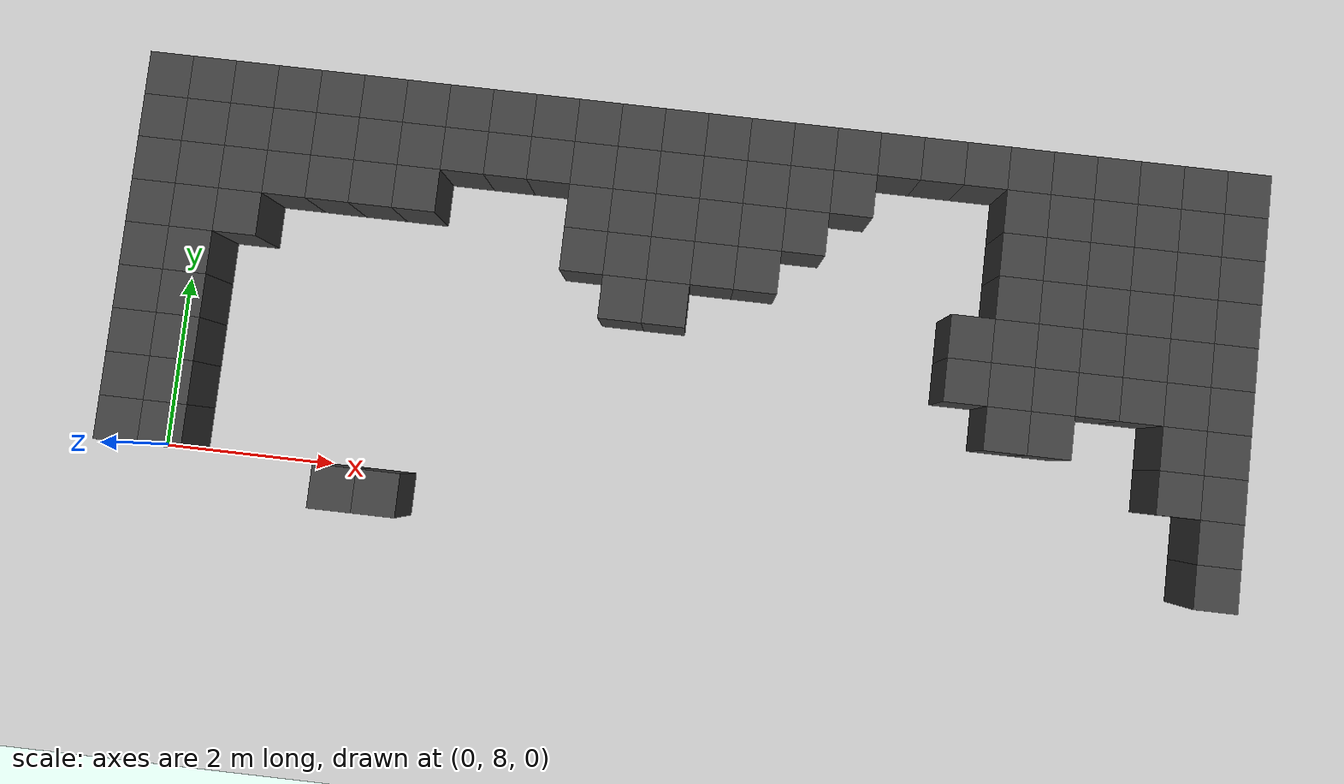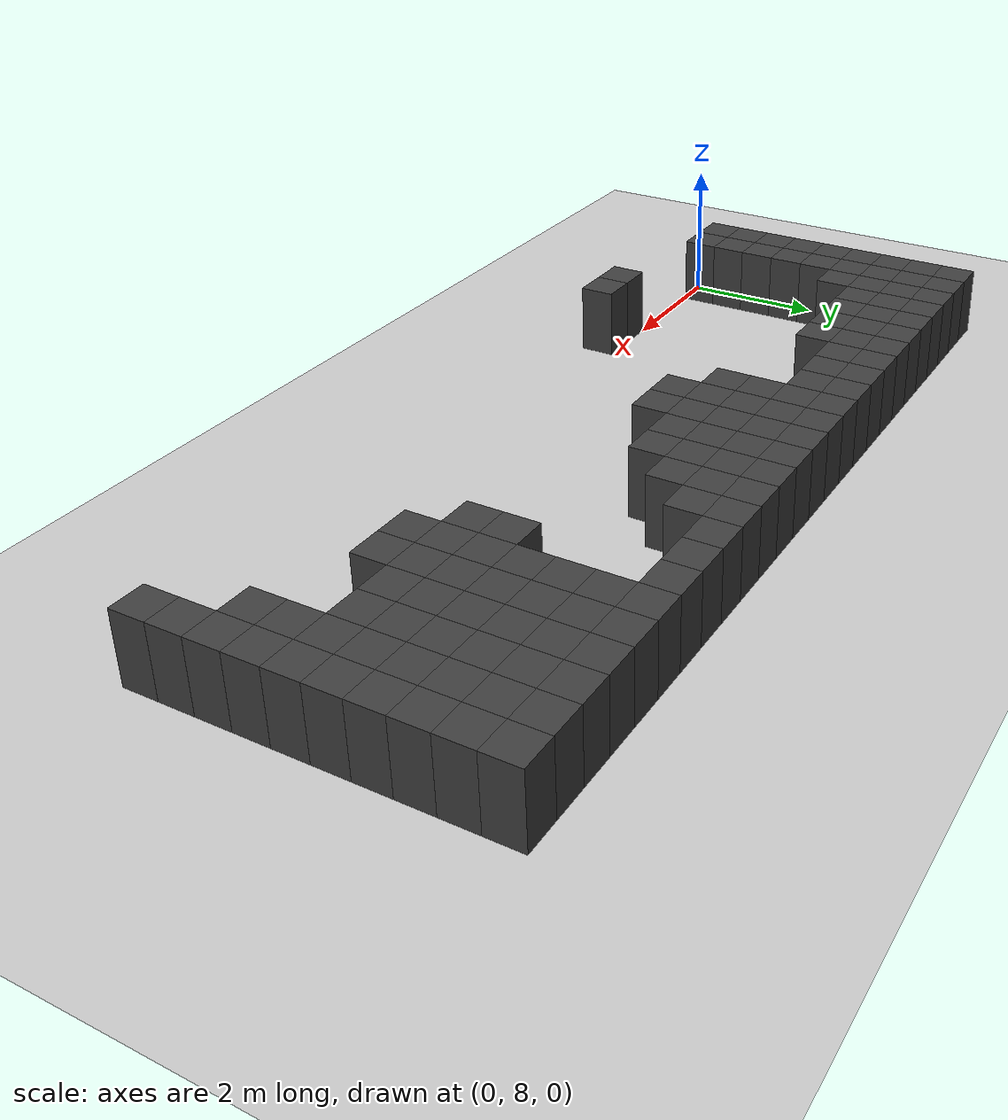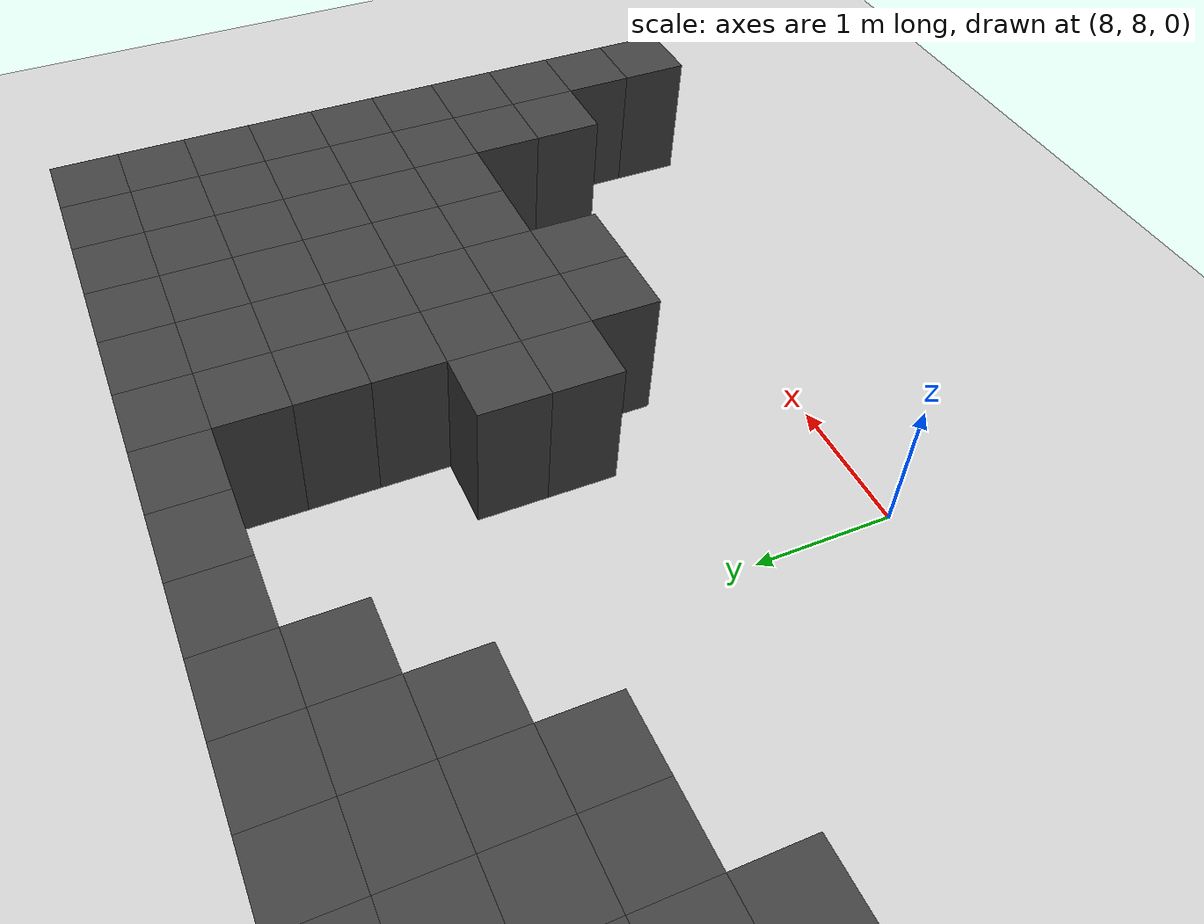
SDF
<sdf version="1.7">
 <world name="map_8074">
  <model name="ground_plane">
   <static>true</static>
   <link name="link">
    <collision name="collision">
     <geometry><plane><normal>0 0 1</normal><size>200 200</size></plane></geometry>
    </collision>
    <visual name="visual">
     <geometry><plane><normal>0 0 1</normal><size>200 200</size></plane></geometry>
     <material><ambient>0.8 0.8 0.8 1</ambient><diffuse>0.8 0.8 0.8 1</diffuse></material>
    </visual>
   </link>
  </model>
  <model name="maze_environment">
   <static>true</static>
   <link name="wall_24">
    <pose>-0.250 12.250 0.500 0 0 0</pose>
    <collision name="col"><geometry><box><size>0.5 0.5 1.0</size></box></geometry></collision>
    <visual name="vis">
     <geometry><box><size>0.5 0.5 1.0</size></box></geometry>
     <material><ambient>0.15 0.15 0.15 1</ambient><diffuse>0.25 0.25 0.25 1</diffuse></material>
    </visual>
   </link>
   <link name="wall_25">
    <pose>0.250 12.250 0.500 0 0 0</pose>
    <collision name="col"><geometry><box><size>0.5 0.5 1.0</size></box></geometry></collision>
    <visual name="vis">
     <geometry><box><size>0.5 0.5 1.0</size></box></geometry>
     <material><ambient>0.15 0.15 0.15 1</ambient><diffuse>0.25 0.25 0.25 1</diffuse></material>
    </visual>
   </link>
   <link name="wall_26">
    <pose>0.750 12.250 0.500 0 0 0</pose>
    <collision name="col"><geometry><box><size>0.5 0.5 1.0</size></box></geometry></collision>
    <visual name="vis">
     <geometry><box><size>0.5 0.5 1.0</size></box></geometry>
     <material><ambient>0.15 0.15 0.15 1</ambient><diffuse>0.25 0.25 0.25 1</diffuse></material>
    </visual>
   </link>
   <link name="wall_27">
    <pose>1.250 12.250 0.500 0 0 0</pose>
    <collision name="col"><geometry><box><size>0.5 0.5 1.0</size></box></geometry></collision>
    <visual name="vis">
     <geometry><box><size>0.5 0.5 1.0</size></box></geometry>
     <material><ambient>0.15 0.15 0.15 1</ambient><diffuse>0.25 0.25 0.25 1</diffuse></material>
    </visual>
   </link>
   <link name="wall_28">
    <pose>1.750 12.250 0.500 0 0 0</pose>
    <collision name="col"><geometry><box><size>0.5 0.5 1.0</size></box></geometry></collision>
    <visual name="vis">
     <geometry><box><size>0.5 0.5 1.0</size></box></geometry>
     <material><ambient>0.15 0.15 0.15 1</ambient><diffuse>0.25 0.25 0.25 1</diffuse></material>
    </visual>
   </link>
   <link name="wall_29">
    <pose>2.250 12.250 0.500 0 0 0</pose>
    <collision name="col"><geometry><box><size>0.5 0.5 1.0</size></box></geometry></collision>
    <visual name="vis">
     <geometry><box><size>0.5 0.5 1.0</size></box></geometry>
     <material><ambient>0.15 0.15 0.15 1</ambient><diffuse>0.25 0.25 0.25 1</diffuse></material>
    </visual>
   </link>
   <link name="wall_30">
    <pose>2.750 12.250 0.500 0 0 0</pose>
    <collision name="col"><geometry><box><size>0.5 0.5 1.0</size></box></geometry></collision>
    <visual name="vis">
     <geometry><box><size>0.5 0.5 1.0</size></box></geometry>
     <material><ambient>0.15 0.15 0.15 1</ambient><diffuse>0.25 0.25 0.25 1</diffuse></material>
    </visual>
   </link>
   <link name="wall_31">
    <pose>3.250 12.250 0.500 0 0 0</pose>
    <collision name="col"><geometry><box><size>0.5 0.5 1.0</size></box></geometry></collision>
    <visual name="vis">
     <geometry><box><size>0.5 0.5 1.0</size></box></geometry>
     <material><ambient>0.15 0.15 0.15 1</ambient><diffuse>0.25 0.25 0.25 1</diffuse></material>
    </visual>
   </link>
   <link name="wall_32">
    <pose>3.750 12.250 0.500 0 0 0</pose>
    <collision name="col"><geometry><box><size>0.5 0.5 1.0</size></box></geometry></collision>
    <visual name="vis">
     <geometry><box><size>0.5 0.5 1.0</size></box></geometry>
     <material><ambient>0.15 0.15 0.15 1</ambient><diffuse>0.25 0.25 0.25 1</diffuse></material>
    </visual>
   </link>
   <link name="wall_33">
    <pose>4.250 12.250 0.500 0 0 0</pose>
    <collision name="col"><geometry><box><size>0.5 0.5 1.0</size></box></geometry></collision>
    <visual name="vis">
     <geometry><box><size>0.5 0.5 1.0</size></box></geometry>
     <material><ambient>0.15 0.15 0.15 1</ambient><diffuse>0.25 0.25 0.25 1</diffuse></material>
    </visual>
   </link>
   <link name="wall_34">
    <pose>4.750 12.250 0.500 0 0 0</pose>
    <collision name="col"><geometry><box><size>0.5 0.5 1.0</size></box></geometry></collision>
    <visual name="vis">
     <geometry><box><size>0.5 0.5 1.0</size></box></geometry>
     <material><ambient>0.15 0.15 0.15 1</ambient><diffuse>0.25 0.25 0.25 1</diffuse></material>
    </visual>
   </link>
   <link name="wall_35">
    <pose>5.250 12.250 0.500 0 0 0</pose>
    <collision name="col"><geometry><box><size>0.5 0.5 1.0</size></box></geometry></collision>
    <visual name="vis">
     <geometry><box><size>0.5 0.5 1.0</size></box></geometry>
     <material><ambient>0.15 0.15 0.15 1</ambient><diffuse>0.25 0.25 0.25 1</diffuse></material>
    </visual>
   </link>
   <link name="wall_36">
    <pose>5.750 12.250 0.500 0 0 0</pose>
    <collision name="col"><geometry><box><size>0.5 0.5 1.0</size></box></geometry></collision>
    <visual name="vis">
     <geometry><box><size>0.5 0.5 1.0</size></box></geometry>
     <material><ambient>0.15 0.15 0.15 1</ambient><diffuse>0.25 0.25 0.25 1</diffuse></material>
    </visual>
   </link>
   <link name="wall_37">
    <pose>6.250 12.250 0.500 0 0 0</pose>
    <collision name="col"><geometry><box><size>0.5 0.5 1.0</size></box></geometry></collision>
    <visual name="vis">
     <geometry><box><size>0.5 0.5 1.0</size></box></geometry>
     <material><ambient>0.15 0.15 0.15 1</ambient><diffuse>0.25 0.25 0.25 1</diffuse></material>
    </visual>
   </link>
   <link name="wall_38">
    <pose>6.750 12.250 0.500 0 0 0</pose>
    <collision name="col"><geometry><box><size>0.5 0.5 1.0</size></box></geometry></collision>
    <visual name="vis">
     <geometry><box><size>0.5 0.5 1.0</size></box></geometry>
     <material><ambient>0.15 0.15 0.15 1</ambient><diffuse>0.25 0.25 0.25 1</diffuse></material>
    </visual>
   </link>
   <link name="wall_39">
    <pose>7.250 12.250 0.500 0 0 0</pose>
    <collision name="col"><geometry><box><size>0.5 0.5 1.0</size></box></geometry></collision>
    <visual name="vis">
     <geometry><box><size>0.5 0.5 1.0</size></box></geometry>
     <material><ambient>0.15 0.15 0.15 1</ambient><diffuse>0.25 0.25 0.25 1</diffuse></material>
    </visual>
   </link>
   <link name="wall_40">
    <pose>7.750 12.250 0.500 0 0 0</pose>
    <collision name="col"><geometry><box><size>0.5 0.5 1.0</size></box></geometry></collision>
    <visual name="vis">
     <geometry><box><size>0.5 0.5 1.0</size></box></geometry>
     <material><ambient>0.15 0.15 0.15 1</ambient><diffuse>0.25 0.25 0.25 1</diffuse></material>
    </visual>
   </link>
   <link name="wall_41">
    <pose>8.250 12.250 0.500 0 0 0</pose>
    <collision name="col"><geometry><box><size>0.5 0.5 1.0</size></box></geometry></collision>
    <visual name="vis">
     <geometry><box><size>0.5 0.5 1.0</size></box></geometry>
     <material><ambient>0.15 0.15 0.15 1</ambient><diffuse>0.25 0.25 0.25 1</diffuse></material>
    </visual>
   </link>
   <link name="wall_42">
    <pose>8.750 12.250 0.500 0 0 0</pose>
    <collision name="col"><geometry><box><size>0.5 0.5 1.0</size></box></geometry></collision>
    <visual name="vis">
     <geometry><box><size>0.5 0.5 1.0</size></box></geometry>
     <material><ambient>0.15 0.15 0.15 1</ambient><diffuse>0.25 0.25 0.25 1</diffuse></material>
    </visual>
   </link>
   <link name="wall_43">
    <pose>9.250 12.250 0.500 0 0 0</pose>
    <collision name="col"><geometry><box><size>0.5 0.5 1.0</size></box></geometry></collision>
    <visual name="vis">
     <geometry><box><size>0.5 0.5 1.0</size></box></geometry>
     <material><ambient>0.15 0.15 0.15 1</ambient><diffuse>0.25 0.25 0.25 1</diffuse></material>
    </visual>
   </link>
   <link name="wall_44">
    <pose>9.750 12.250 0.500 0 0 0</pose>
    <collision name="col"><geometry><box><size>0.5 0.5 1.0</size></box></geometry></collision>
    <visual name="vis">
     <geometry><box><size>0.5 0.5 1.0</size></box></geometry>
     <material><ambient>0.15 0.15 0.15 1</ambient><diffuse>0.25 0.25 0.25 1</diffuse></material>
    </visual>
   </link>
   <link name="wall_45">
    <pose>10.250 12.250 0.500 0 0 0</pose>
    <collision name="col"><geometry><box><size>0.5 0.5 1.0</size></box></geometry></collision>
    <visual name="vis">
     <geometry><box><size>0.5 0.5 1.0</size></box></geometry>
     <material><ambient>0.15 0.15 0.15 1</ambient><diffuse>0.25 0.25 0.25 1</diffuse></material>
    </visual>
   </link>
   <link name="wall_46">
    <pose>10.750 12.250 0.500 0 0 0</pose>
    <collision name="col"><geometry><box><size>0.5 0.5 1.0</size></box></geometry></collision>
    <visual name="vis">
     <geometry><box><size>0.5 0.5 1.0</size></box></geometry>
     <material><ambient>0.15 0.15 0.15 1</ambient><diffuse>0.25 0.25 0.25 1</diffuse></material>
    </visual>
   </link>
   <link name="wall_47">
    <pose>11.250 12.250 0.500 0 0 0</pose>
    <collision name="col"><geometry><box><size>0.5 0.5 1.0</size></box></geometry></collision>
    <visual name="vis">
     <geometry><box><size>0.5 0.5 1.0</size></box></geometry>
     <material><ambient>0.15 0.15 0.15 1</ambient><diffuse>0.25 0.25 0.25 1</diffuse></material>
    </visual>
   </link>
   <link name="wall_48">
    <pose>11.750 12.250 0.500 0 0 0</pose>
    <collision name="col"><geometry><box><size>0.5 0.5 1.0</size></box></geometry></collision>
    <visual name="vis">
     <geometry><box><size>0.5 0.5 1.0</size></box></geometry>
     <material><ambient>0.15 0.15 0.15 1</ambient><diffuse>0.25 0.25 0.25 1</diffuse></material>
    </visual>
   </link>
   <link name="wall_49">
    <pose>12.250 12.250 0.500 0 0 0</pose>
    <collision name="col"><geometry><box><size>0.5 0.5 1.0</size></box></geometry></collision>
    <visual name="vis">
     <geometry><box><size>0.5 0.5 1.0</size></box></geometry>
     <material><ambient>0.15 0.15 0.15 1</ambient><diffuse>0.25 0.25 0.25 1</diffuse></material>
    </visual>
   </link>
   <link name="wall_63">
    <pose>-0.250 11.750 0.500 0 0 0</pose>
    <collision name="col"><geometry><box><size>0.5 0.5 1.0</size></box></geometry></collision>
    <visual name="vis">
     <geometry><box><size>0.5 0.5 1.0</size></box></geometry>
     <material><ambient>0.15 0.15 0.15 1</ambient><diffuse>0.25 0.25 0.25 1</diffuse></material>
    </visual>
   </link>
   <link name="wall_64">
    <pose>0.250 11.750 0.500 0 0 0</pose>
    <collision name="col"><geometry><box><size>0.5 0.5 1.0</size></box></geometry></collision>
    <visual name="vis">
     <geometry><box><size>0.5 0.5 1.0</size></box></geometry>
     <material><ambient>0.15 0.15 0.15 1</ambient><diffuse>0.25 0.25 0.25 1</diffuse></material>
    </visual>
   </link>
   <link name="wall_65">
    <pose>0.750 11.750 0.500 0 0 0</pose>
    <collision name="col"><geometry><box><size>0.5 0.5 1.0</size></box></geometry></collision>
    <visual name="vis">
     <geometry><box><size>0.5 0.5 1.0</size></box></geometry>
     <material><ambient>0.15 0.15 0.15 1</ambient><diffuse>0.25 0.25 0.25 1</diffuse></material>
    </visual>
   </link>
   <link name="wall_66">
    <pose>1.250 11.750 0.500 0 0 0</pose>
    <collision name="col"><geometry><box><size>0.5 0.5 1.0</size></box></geometry></collision>
    <visual name="vis">
     <geometry><box><size>0.5 0.5 1.0</size></box></geometry>
     <material><ambient>0.15 0.15 0.15 1</ambient><diffuse>0.25 0.25 0.25 1</diffuse></material>
    </visual>
   </link>
   <link name="wall_67">
    <pose>1.750 11.750 0.500 0 0 0</pose>
    <collision name="col"><geometry><box><size>0.5 0.5 1.0</size></box></geometry></collision>
    <visual name="vis">
     <geometry><box><size>0.5 0.5 1.0</size></box></geometry>
     <material><ambient>0.15 0.15 0.15 1</ambient><diffuse>0.25 0.25 0.25 1</diffuse></material>
    </visual>
   </link>
   <link name="wall_68">
    <pose>2.250 11.750 0.500 0 0 0</pose>
    <collision name="col"><geometry><box><size>0.5 0.5 1.0</size></box></geometry></collision>
    <visual name="vis">
     <geometry><box><size>0.5 0.5 1.0</size></box></geometry>
     <material><ambient>0.15 0.15 0.15 1</ambient><diffuse>0.25 0.25 0.25 1</diffuse></material>
    </visual>
   </link>
   <link name="wall_69">
    <pose>2.750 11.750 0.500 0 0 0</pose>
    <collision name="col"><geometry><box><size>0.5 0.5 1.0</size></box></geometry></collision>
    <visual name="vis">
     <geometry><box><size>0.5 0.5 1.0</size></box></geometry>
     <material><ambient>0.15 0.15 0.15 1</ambient><diffuse>0.25 0.25 0.25 1</diffuse></material>
    </visual>
   </link>
   <link name="wall_70">
    <pose>3.250 11.750 0.500 0 0 0</pose>
    <collision name="col"><geometry><box><size>0.5 0.5 1.0</size></box></geometry></collision>
    <visual name="vis">
     <geometry><box><size>0.5 0.5 1.0</size></box></geometry>
     <material><ambient>0.15 0.15 0.15 1</ambient><diffuse>0.25 0.25 0.25 1</diffuse></material>
    </visual>
   </link>
   <link name="wall_71">
    <pose>3.750 11.750 0.500 0 0 0</pose>
    <collision name="col"><geometry><box><size>0.5 0.5 1.0</size></box></geometry></collision>
    <visual name="vis">
     <geometry><box><size>0.5 0.5 1.0</size></box></geometry>
     <material><ambient>0.15 0.15 0.15 1</ambient><diffuse>0.25 0.25 0.25 1</diffuse></material>
    </visual>
   </link>
   <link name="wall_72">
    <pose>4.250 11.750 0.500 0 0 0</pose>
    <collision name="col"><geometry><box><size>0.5 0.5 1.0</size></box></geometry></collision>
    <visual name="vis">
     <geometry><box><size>0.5 0.5 1.0</size></box></geometry>
     <material><ambient>0.15 0.15 0.15 1</ambient><diffuse>0.25 0.25 0.25 1</diffuse></material>
    </visual>
   </link>
   <link name="wall_73">
    <pose>4.750 11.750 0.500 0 0 0</pose>
    <collision name="col"><geometry><box><size>0.5 0.5 1.0</size></box></geometry></collision>
    <visual name="vis">
     <geometry><box><size>0.5 0.5 1.0</size></box></geometry>
     <material><ambient>0.15 0.15 0.15 1</ambient><diffuse>0.25 0.25 0.25 1</diffuse></material>
    </visual>
   </link>
   <link name="wall_74">
    <pose>5.250 11.750 0.500 0 0 0</pose>
    <collision name="col"><geometry><box><size>0.5 0.5 1.0</size></box></geometry></collision>
    <visual name="vis">
     <geometry><box><size>0.5 0.5 1.0</size></box></geometry>
     <material><ambient>0.15 0.15 0.15 1</ambient><diffuse>0.25 0.25 0.25 1</diffuse></material>
    </visual>
   </link>
   <link name="wall_75">
    <pose>5.750 11.750 0.500 0 0 0</pose>
    <collision name="col"><geometry><box><size>0.5 0.5 1.0</size></box></geometry></collision>
    <visual name="vis">
     <geometry><box><size>0.5 0.5 1.0</size></box></geometry>
     <material><ambient>0.15 0.15 0.15 1</ambient><diffuse>0.25 0.25 0.25 1</diffuse></material>
    </visual>
   </link>
   <link name="wall_76">
    <pose>6.250 11.750 0.500 0 0 0</pose>
    <collision name="col"><geometry><box><size>0.5 0.5 1.0</size></box></geometry></collision>
    <visual name="vis">
     <geometry><box><size>0.5 0.5 1.0</size></box></geometry>
     <material><ambient>0.15 0.15 0.15 1</ambient><diffuse>0.25 0.25 0.25 1</diffuse></material>
    </visual>
   </link>
   <link name="wall_77">
    <pose>6.750 11.750 0.500 0 0 0</pose>
    <collision name="col"><geometry><box><size>0.5 0.5 1.0</size></box></geometry></collision>
    <visual name="vis">
     <geometry><box><size>0.5 0.5 1.0</size></box></geometry>
     <material><ambient>0.15 0.15 0.15 1</ambient><diffuse>0.25 0.25 0.25 1</diffuse></material>
    </visual>
   </link>
   <link name="wall_78">
    <pose>7.250 11.750 0.500 0 0 0</pose>
    <collision name="col"><geometry><box><size>0.5 0.5 1.0</size></box></geometry></collision>
    <visual name="vis">
     <geometry><box><size>0.5 0.5 1.0</size></box></geometry>
     <material><ambient>0.15 0.15 0.15 1</ambient><diffuse>0.25 0.25 0.25 1</diffuse></material>
    </visual>
   </link>
   <link name="wall_79">
    <pose>7.750 11.750 0.500 0 0 0</pose>
    <collision name="col"><geometry><box><size>0.5 0.5 1.0</size></box></geometry></collision>
    <visual name="vis">
     <geometry><box><size>0.5 0.5 1.0</size></box></geometry>
     <material><ambient>0.15 0.15 0.15 1</ambient><diffuse>0.25 0.25 0.25 1</diffuse></material>
    </visual>
   </link>
   <link name="wall_80">
    <pose>9.750 11.750 0.500 0 0 0</pose>
    <collision name="col"><geometry><box><size>0.5 0.5 1.0</size></box></geometry></collision>
    <visual name="vis">
     <geometry><box><size>0.5 0.5 1.0</size></box></geometry>
     <material><ambient>0.15 0.15 0.15 1</ambient><diffuse>0.25 0.25 0.25 1</diffuse></material>
    </visual>
   </link>
   <link name="wall_81">
    <pose>10.250 11.750 0.500 0 0 0</pose>
    <collision name="col"><geometry><box><size>0.5 0.5 1.0</size></box></geometry></collision>
    <visual name="vis">
     <geometry><box><size>0.5 0.5 1.0</size></box></geometry>
     <material><ambient>0.15 0.15 0.15 1</ambient><diffuse>0.25 0.25 0.25 1</diffuse></material>
    </visual>
   </link>
   <link name="wall_82">
    <pose>10.750 11.750 0.500 0 0 0</pose>
    <collision name="col"><geometry><box><size>0.5 0.5 1.0</size></box></geometry></collision>
    <visual name="vis">
     <geometry><box><size>0.5 0.5 1.0</size></box></geometry>
     <material><ambient>0.15 0.15 0.15 1</ambient><diffuse>0.25 0.25 0.25 1</diffuse></material>
    </visual>
   </link>
   <link name="wall_83">
    <pose>11.250 11.750 0.500 0 0 0</pose>
    <collision name="col"><geometry><box><size>0.5 0.5 1.0</size></box></geometry></collision>
    <visual name="vis">
     <geometry><box><size>0.5 0.5 1.0</size></box></geometry>
     <material><ambient>0.15 0.15 0.15 1</ambient><diffuse>0.25 0.25 0.25 1</diffuse></material>
    </visual>
   </link>
   <link name="wall_84">
    <pose>11.750 11.750 0.500 0 0 0</pose>
    <collision name="col"><geometry><box><size>0.5 0.5 1.0</size></box></geometry></collision>
    <visual name="vis">
     <geometry><box><size>0.5 0.5 1.0</size></box></geometry>
     <material><ambient>0.15 0.15 0.15 1</ambient><diffuse>0.25 0.25 0.25 1</diffuse></material>
    </visual>
   </link>
   <link name="wall_85">
    <pose>12.250 11.750 0.500 0 0 0</pose>
    <collision name="col"><geometry><box><size>0.5 0.5 1.0</size></box></geometry></collision>
    <visual name="vis">
     <geometry><box><size>0.5 0.5 1.0</size></box></geometry>
     <material><ambient>0.15 0.15 0.15 1</ambient><diffuse>0.25 0.25 0.25 1</diffuse></material>
    </visual>
   </link>
   <link name="wall_92">
    <pose>-0.250 11.250 0.500 0 0 0</pose>
    <collision name="col"><geometry><box><size>0.5 0.5 1.0</size></box></geometry></collision>
    <visual name="vis">
     <geometry><box><size>0.5 0.5 1.0</size></box></geometry>
     <material><ambient>0.15 0.15 0.15 1</ambient><diffuse>0.25 0.25 0.25 1</diffuse></material>
    </visual>
   </link>
   <link name="wall_93">
    <pose>0.250 11.250 0.500 0 0 0</pose>
    <collision name="col"><geometry><box><size>0.5 0.5 1.0</size></box></geometry></collision>
    <visual name="vis">
     <geometry><box><size>0.5 0.5 1.0</size></box></geometry>
     <material><ambient>0.15 0.15 0.15 1</ambient><diffuse>0.25 0.25 0.25 1</diffuse></material>
    </visual>
   </link>
   <link name="wall_94">
    <pose>0.750 11.250 0.500 0 0 0</pose>
    <collision name="col"><geometry><box><size>0.5 0.5 1.0</size></box></geometry></collision>
    <visual name="vis">
     <geometry><box><size>0.5 0.5 1.0</size></box></geometry>
     <material><ambient>0.15 0.15 0.15 1</ambient><diffuse>0.25 0.25 0.25 1</diffuse></material>
    </visual>
   </link>
   <link name="wall_95">
    <pose>1.250 11.250 0.500 0 0 0</pose>
    <collision name="col"><geometry><box><size>0.5 0.5 1.0</size></box></geometry></collision>
    <visual name="vis">
     <geometry><box><size>0.5 0.5 1.0</size></box></geometry>
     <material><ambient>0.15 0.15 0.15 1</ambient><diffuse>0.25 0.25 0.25 1</diffuse></material>
    </visual>
   </link>
   <link name="wall_96">
    <pose>1.750 11.250 0.500 0 0 0</pose>
    <collision name="col"><geometry><box><size>0.5 0.5 1.0</size></box></geometry></collision>
    <visual name="vis">
     <geometry><box><size>0.5 0.5 1.0</size></box></geometry>
     <material><ambient>0.15 0.15 0.15 1</ambient><diffuse>0.25 0.25 0.25 1</diffuse></material>
    </visual>
   </link>
   <link name="wall_97">
    <pose>2.250 11.250 0.500 0 0 0</pose>
    <collision name="col"><geometry><box><size>0.5 0.5 1.0</size></box></geometry></collision>
    <visual name="vis">
     <geometry><box><size>0.5 0.5 1.0</size></box></geometry>
     <material><ambient>0.15 0.15 0.15 1</ambient><diffuse>0.25 0.25 0.25 1</diffuse></material>
    </visual>
   </link>
   <link name="wall_98">
    <pose>2.750 11.250 0.500 0 0 0</pose>
    <collision name="col"><geometry><box><size>0.5 0.5 1.0</size></box></geometry></collision>
    <visual name="vis">
     <geometry><box><size>0.5 0.5 1.0</size></box></geometry>
     <material><ambient>0.15 0.15 0.15 1</ambient><diffuse>0.25 0.25 0.25 1</diffuse></material>
    </visual>
   </link>
   <link name="wall_99">
    <pose>4.750 11.250 0.500 0 0 0</pose>
    <collision name="col"><geometry><box><size>0.5 0.5 1.0</size></box></geometry></collision>
    <visual name="vis">
     <geometry><box><size>0.5 0.5 1.0</size></box></geometry>
     <material><ambient>0.15 0.15 0.15 1</ambient><diffuse>0.25 0.25 0.25 1</diffuse></material>
    </visual>
   </link>
   <link name="wall_100">
    <pose>5.250 11.250 0.500 0 0 0</pose>
    <collision name="col"><geometry><box><size>0.5 0.5 1.0</size></box></geometry></collision>
    <visual name="vis">
     <geometry><box><size>0.5 0.5 1.0</size></box></geometry>
     <material><ambient>0.15 0.15 0.15 1</ambient><diffuse>0.25 0.25 0.25 1</diffuse></material>
    </visual>
   </link>
   <link name="wall_101">
    <pose>5.750 11.250 0.500 0 0 0</pose>
    <collision name="col"><geometry><box><size>0.5 0.5 1.0</size></box></geometry></collision>
    <visual name="vis">
     <geometry><box><size>0.5 0.5 1.0</size></box></geometry>
     <material><ambient>0.15 0.15 0.15 1</ambient><diffuse>0.25 0.25 0.25 1</diffuse></material>
    </visual>
   </link>
   <link name="wall_102">
    <pose>6.250 11.250 0.500 0 0 0</pose>
    <collision name="col"><geometry><box><size>0.5 0.5 1.0</size></box></geometry></collision>
    <visual name="vis">
     <geometry><box><size>0.5 0.5 1.0</size></box></geometry>
     <material><ambient>0.15 0.15 0.15 1</ambient><diffuse>0.25 0.25 0.25 1</diffuse></material>
    </visual>
   </link>
   <link name="wall_103">
    <pose>6.750 11.250 0.500 0 0 0</pose>
    <collision name="col"><geometry><box><size>0.5 0.5 1.0</size></box></geometry></collision>
    <visual name="vis">
     <geometry><box><size>0.5 0.5 1.0</size></box></geometry>
     <material><ambient>0.15 0.15 0.15 1</ambient><diffuse>0.25 0.25 0.25 1</diffuse></material>
    </visual>
   </link>
   <link name="wall_104">
    <pose>7.250 11.250 0.500 0 0 0</pose>
    <collision name="col"><geometry><box><size>0.5 0.5 1.0</size></box></geometry></collision>
    <visual name="vis">
     <geometry><box><size>0.5 0.5 1.0</size></box></geometry>
     <material><ambient>0.15 0.15 0.15 1</ambient><diffuse>0.25 0.25 0.25 1</diffuse></material>
    </visual>
   </link>
   <link name="wall_105">
    <pose>9.750 11.250 0.500 0 0 0</pose>
    <collision name="col"><geometry><box><size>0.5 0.5 1.0</size></box></geometry></collision>
    <visual name="vis">
     <geometry><box><size>0.5 0.5 1.0</size></box></geometry>
     <material><ambient>0.15 0.15 0.15 1</ambient><diffuse>0.25 0.25 0.25 1</diffuse></material>
    </visual>
   </link>
   <link name="wall_106">
    <pose>10.250 11.250 0.500 0 0 0</pose>
    <collision name="col"><geometry><box><size>0.5 0.5 1.0</size></box></geometry></collision>
    <visual name="vis">
     <geometry><box><size>0.5 0.5 1.0</size></box></geometry>
     <material><ambient>0.15 0.15 0.15 1</ambient><diffuse>0.25 0.25 0.25 1</diffuse></material>
    </visual>
   </link>
   <link name="wall_107">
    <pose>10.750 11.250 0.500 0 0 0</pose>
    <collision name="col"><geometry><box><size>0.5 0.5 1.0</size></box></geometry></collision>
    <visual name="vis">
     <geometry><box><size>0.5 0.5 1.0</size></box></geometry>
     <material><ambient>0.15 0.15 0.15 1</ambient><diffuse>0.25 0.25 0.25 1</diffuse></material>
    </visual>
   </link>
   <link name="wall_108">
    <pose>11.250 11.250 0.500 0 0 0</pose>
    <collision name="col"><geometry><box><size>0.5 0.5 1.0</size></box></geometry></collision>
    <visual name="vis">
     <geometry><box><size>0.5 0.5 1.0</size></box></geometry>
     <material><ambient>0.15 0.15 0.15 1</ambient><diffuse>0.25 0.25 0.25 1</diffuse></material>
    </visual>
   </link>
   <link name="wall_109">
    <pose>11.750 11.250 0.500 0 0 0</pose>
    <collision name="col"><geometry><box><size>0.5 0.5 1.0</size></box></geometry></collision>
    <visual name="vis">
     <geometry><box><size>0.5 0.5 1.0</size></box></geometry>
     <material><ambient>0.15 0.15 0.15 1</ambient><diffuse>0.25 0.25 0.25 1</diffuse></material>
    </visual>
   </link>
   <link name="wall_110">
    <pose>12.250 11.250 0.500 0 0 0</pose>
    <collision name="col"><geometry><box><size>0.5 0.5 1.0</size></box></geometry></collision>
    <visual name="vis">
     <geometry><box><size>0.5 0.5 1.0</size></box></geometry>
     <material><ambient>0.15 0.15 0.15 1</ambient><diffuse>0.25 0.25 0.25 1</diffuse></material>
    </visual>
   </link>
   <link name="wall_115">
    <pose>-0.250 10.750 0.500 0 0 0</pose>
    <collision name="col"><geometry><box><size>0.5 0.5 1.0</size></box></geometry></collision>
    <visual name="vis">
     <geometry><box><size>0.5 0.5 1.0</size></box></geometry>
     <material><ambient>0.15 0.15 0.15 1</ambient><diffuse>0.25 0.25 0.25 1</diffuse></material>
    </visual>
   </link>
   <link name="wall_116">
    <pose>0.250 10.750 0.500 0 0 0</pose>
    <collision name="col"><geometry><box><size>0.5 0.5 1.0</size></box></geometry></collision>
    <visual name="vis">
     <geometry><box><size>0.5 0.5 1.0</size></box></geometry>
     <material><ambient>0.15 0.15 0.15 1</ambient><diffuse>0.25 0.25 0.25 1</diffuse></material>
    </visual>
   </link>
   <link name="wall_117">
    <pose>0.750 10.750 0.500 0 0 0</pose>
    <collision name="col"><geometry><box><size>0.5 0.5 1.0</size></box></geometry></collision>
    <visual name="vis">
     <geometry><box><size>0.5 0.5 1.0</size></box></geometry>
     <material><ambient>0.15 0.15 0.15 1</ambient><diffuse>0.25 0.25 0.25 1</diffuse></material>
    </visual>
   </link>
   <link name="wall_118">
    <pose>4.750 10.750 0.500 0 0 0</pose>
    <collision name="col"><geometry><box><size>0.5 0.5 1.0</size></box></geometry></collision>
    <visual name="vis">
     <geometry><box><size>0.5 0.5 1.0</size></box></geometry>
     <material><ambient>0.15 0.15 0.15 1</ambient><diffuse>0.25 0.25 0.25 1</diffuse></material>
    </visual>
   </link>
   <link name="wall_119">
    <pose>5.250 10.750 0.500 0 0 0</pose>
    <collision name="col"><geometry><box><size>0.5 0.5 1.0</size></box></geometry></collision>
    <visual name="vis">
     <geometry><box><size>0.5 0.5 1.0</size></box></geometry>
     <material><ambient>0.15 0.15 0.15 1</ambient><diffuse>0.25 0.25 0.25 1</diffuse></material>
    </visual>
   </link>
   <link name="wall_120">
    <pose>5.750 10.750 0.500 0 0 0</pose>
    <collision name="col"><geometry><box><size>0.5 0.5 1.0</size></box></geometry></collision>
    <visual name="vis">
     <geometry><box><size>0.5 0.5 1.0</size></box></geometry>
     <material><ambient>0.15 0.15 0.15 1</ambient><diffuse>0.25 0.25 0.25 1</diffuse></material>
    </visual>
   </link>
   <link name="wall_121">
    <pose>6.250 10.750 0.500 0 0 0</pose>
    <collision name="col"><geometry><box><size>0.5 0.5 1.0</size></box></geometry></collision>
    <visual name="vis">
     <geometry><box><size>0.5 0.5 1.0</size></box></geometry>
     <material><ambient>0.15 0.15 0.15 1</ambient><diffuse>0.25 0.25 0.25 1</diffuse></material>
    </visual>
   </link>
   <link name="wall_122">
    <pose>6.750 10.750 0.500 0 0 0</pose>
    <collision name="col"><geometry><box><size>0.5 0.5 1.0</size></box></geometry></collision>
    <visual name="vis">
     <geometry><box><size>0.5 0.5 1.0</size></box></geometry>
     <material><ambient>0.15 0.15 0.15 1</ambient><diffuse>0.25 0.25 0.25 1</diffuse></material>
    </visual>
   </link>
   <link name="wall_123">
    <pose>9.750 10.750 0.500 0 0 0</pose>
    <collision name="col"><geometry><box><size>0.5 0.5 1.0</size></box></geometry></collision>
    <visual name="vis">
     <geometry><box><size>0.5 0.5 1.0</size></box></geometry>
     <material><ambient>0.15 0.15 0.15 1</ambient><diffuse>0.25 0.25 0.25 1</diffuse></material>
    </visual>
   </link>
   <link name="wall_124">
    <pose>10.250 10.750 0.500 0 0 0</pose>
    <collision name="col"><geometry><box><size>0.5 0.5 1.0</size></box></geometry></collision>
    <visual name="vis">
     <geometry><box><size>0.5 0.5 1.0</size></box></geometry>
     <material><ambient>0.15 0.15 0.15 1</ambient><diffuse>0.25 0.25 0.25 1</diffuse></material>
    </visual>
   </link>
   <link name="wall_125">
    <pose>10.750 10.750 0.500 0 0 0</pose>
    <collision name="col"><geometry><box><size>0.5 0.5 1.0</size></box></geometry></collision>
    <visual name="vis">
     <geometry><box><size>0.5 0.5 1.0</size></box></geometry>
     <material><ambient>0.15 0.15 0.15 1</ambient><diffuse>0.25 0.25 0.25 1</diffuse></material>
    </visual>
   </link>
   <link name="wall_126">
    <pose>11.250 10.750 0.500 0 0 0</pose>
    <collision name="col"><geometry><box><size>0.5 0.5 1.0</size></box></geometry></collision>
    <visual name="vis">
     <geometry><box><size>0.5 0.5 1.0</size></box></geometry>
     <material><ambient>0.15 0.15 0.15 1</ambient><diffuse>0.25 0.25 0.25 1</diffuse></material>
    </visual>
   </link>
   <link name="wall_127">
    <pose>11.750 10.750 0.500 0 0 0</pose>
    <collision name="col"><geometry><box><size>0.5 0.5 1.0</size></box></geometry></collision>
    <visual name="vis">
     <geometry><box><size>0.5 0.5 1.0</size></box></geometry>
     <material><ambient>0.15 0.15 0.15 1</ambient><diffuse>0.25 0.25 0.25 1</diffuse></material>
    </visual>
   </link>
   <link name="wall_128">
    <pose>12.250 10.750 0.500 0 0 0</pose>
    <collision name="col"><geometry><box><size>0.5 0.5 1.0</size></box></geometry></collision>
    <visual name="vis">
     <geometry><box><size>0.5 0.5 1.0</size></box></geometry>
     <material><ambient>0.15 0.15 0.15 1</ambient><diffuse>0.25 0.25 0.25 1</diffuse></material>
    </visual>
   </link>
   <link name="wall_134">
    <pose>-0.250 10.250 0.500 0 0 0</pose>
    <collision name="col"><geometry><box><size>0.5 0.5 1.0</size></box></geometry></collision>
    <visual name="vis">
     <geometry><box><size>0.5 0.5 1.0</size></box></geometry>
     <material><ambient>0.15 0.15 0.15 1</ambient><diffuse>0.25 0.25 0.25 1</diffuse></material>
    </visual>
   </link>
   <link name="wall_135">
    <pose>0.250 10.250 0.500 0 0 0</pose>
    <collision name="col"><geometry><box><size>0.5 0.5 1.0</size></box></geometry></collision>
    <visual name="vis">
     <geometry><box><size>0.5 0.5 1.0</size></box></geometry>
     <material><ambient>0.15 0.15 0.15 1</ambient><diffuse>0.25 0.25 0.25 1</diffuse></material>
    </visual>
   </link>
   <link name="wall_136">
    <pose>5.250 10.250 0.500 0 0 0</pose>
    <collision name="col"><geometry><box><size>0.5 0.5 1.0</size></box></geometry></collision>
    <visual name="vis">
     <geometry><box><size>0.5 0.5 1.0</size></box></geometry>
     <material><ambient>0.15 0.15 0.15 1</ambient><diffuse>0.25 0.25 0.25 1</diffuse></material>
    </visual>
   </link>
   <link name="wall_137">
    <pose>5.750 10.250 0.500 0 0 0</pose>
    <collision name="col"><geometry><box><size>0.5 0.5 1.0</size></box></geometry></collision>
    <visual name="vis">
     <geometry><box><size>0.5 0.5 1.0</size></box></geometry>
     <material><ambient>0.15 0.15 0.15 1</ambient><diffuse>0.25 0.25 0.25 1</diffuse></material>
    </visual>
   </link>
   <link name="wall_138">
    <pose>9.250 10.250 0.500 0 0 0</pose>
    <collision name="col"><geometry><box><size>0.5 0.5 1.0</size></box></geometry></collision>
    <visual name="vis">
     <geometry><box><size>0.5 0.5 1.0</size></box></geometry>
     <material><ambient>0.15 0.15 0.15 1</ambient><diffuse>0.25 0.25 0.25 1</diffuse></material>
    </visual>
   </link>
   <link name="wall_139">
    <pose>9.750 10.250 0.500 0 0 0</pose>
    <collision name="col"><geometry><box><size>0.5 0.5 1.0</size></box></geometry></collision>
    <visual name="vis">
     <geometry><box><size>0.5 0.5 1.0</size></box></geometry>
     <material><ambient>0.15 0.15 0.15 1</ambient><diffuse>0.25 0.25 0.25 1</diffuse></material>
    </visual>
   </link>
   <link name="wall_140">
    <pose>10.250 10.250 0.500 0 0 0</pose>
    <collision name="col"><geometry><box><size>0.5 0.5 1.0</size></box></geometry></collision>
    <visual name="vis">
     <geometry><box><size>0.5 0.5 1.0</size></box></geometry>
     <material><ambient>0.15 0.15 0.15 1</ambient><diffuse>0.25 0.25 0.25 1</diffuse></material>
    </visual>
   </link>
   <link name="wall_141">
    <pose>10.750 10.250 0.500 0 0 0</pose>
    <collision name="col"><geometry><box><size>0.5 0.5 1.0</size></box></geometry></collision>
    <visual name="vis">
     <geometry><box><size>0.5 0.5 1.0</size></box></geometry>
     <material><ambient>0.15 0.15 0.15 1</ambient><diffuse>0.25 0.25 0.25 1</diffuse></material>
    </visual>
   </link>
   <link name="wall_142">
    <pose>11.250 10.250 0.500 0 0 0</pose>
    <collision name="col"><geometry><box><size>0.5 0.5 1.0</size></box></geometry></collision>
    <visual name="vis">
     <geometry><box><size>0.5 0.5 1.0</size></box></geometry>
     <material><ambient>0.15 0.15 0.15 1</ambient><diffuse>0.25 0.25 0.25 1</diffuse></material>
    </visual>
   </link>
   <link name="wall_143">
    <pose>11.750 10.250 0.500 0 0 0</pose>
    <collision name="col"><geometry><box><size>0.5 0.5 1.0</size></box></geometry></collision>
    <visual name="vis">
     <geometry><box><size>0.5 0.5 1.0</size></box></geometry>
     <material><ambient>0.15 0.15 0.15 1</ambient><diffuse>0.25 0.25 0.25 1</diffuse></material>
    </visual>
   </link>
   <link name="wall_144">
    <pose>12.250 10.250 0.500 0 0 0</pose>
    <collision name="col"><geometry><box><size>0.5 0.5 1.0</size></box></geometry></collision>
    <visual name="vis">
     <geometry><box><size>0.5 0.5 1.0</size></box></geometry>
     <material><ambient>0.15 0.15 0.15 1</ambient><diffuse>0.25 0.25 0.25 1</diffuse></material>
    </visual>
   </link>
   <link name="wall_153">
    <pose>-0.250 9.750 0.500 0 0 0</pose>
    <collision name="col"><geometry><box><size>0.5 0.5 1.0</size></box></geometry></collision>
    <visual name="vis">
     <geometry><box><size>0.5 0.5 1.0</size></box></geometry>
     <material><ambient>0.15 0.15 0.15 1</ambient><diffuse>0.25 0.25 0.25 1</diffuse></material>
    </visual>
   </link>
   <link name="wall_154">
    <pose>0.250 9.750 0.500 0 0 0</pose>
    <collision name="col"><geometry><box><size>0.5 0.5 1.0</size></box></geometry></collision>
    <visual name="vis">
     <geometry><box><size>0.5 0.5 1.0</size></box></geometry>
     <material><ambient>0.15 0.15 0.15 1</ambient><diffuse>0.25 0.25 0.25 1</diffuse></material>
    </visual>
   </link>
   <link name="wall_155">
    <pose>9.250 9.750 0.500 0 0 0</pose>
    <collision name="col"><geometry><box><size>0.5 0.5 1.0</size></box></geometry></collision>
    <visual name="vis">
     <geometry><box><size>0.5 0.5 1.0</size></box></geometry>
     <material><ambient>0.15 0.15 0.15 1</ambient><diffuse>0.25 0.25 0.25 1</diffuse></material>
    </visual>
   </link>
   <link name="wall_156">
    <pose>9.750 9.750 0.500 0 0 0</pose>
    <collision name="col"><geometry><box><size>0.5 0.5 1.0</size></box></geometry></collision>
    <visual name="vis">
     <geometry><box><size>0.5 0.5 1.0</size></box></geometry>
     <material><ambient>0.15 0.15 0.15 1</ambient><diffuse>0.25 0.25 0.25 1</diffuse></material>
    </visual>
   </link>
   <link name="wall_157">
    <pose>10.250 9.750 0.500 0 0 0</pose>
    <collision name="col"><geometry><box><size>0.5 0.5 1.0</size></box></geometry></collision>
    <visual name="vis">
     <geometry><box><size>0.5 0.5 1.0</size></box></geometry>
     <material><ambient>0.15 0.15 0.15 1</ambient><diffuse>0.25 0.25 0.25 1</diffuse></material>
    </visual>
   </link>
   <link name="wall_158">
    <pose>10.750 9.750 0.500 0 0 0</pose>
    <collision name="col"><geometry><box><size>0.5 0.5 1.0</size></box></geometry></collision>
    <visual name="vis">
     <geometry><box><size>0.5 0.5 1.0</size></box></geometry>
     <material><ambient>0.15 0.15 0.15 1</ambient><diffuse>0.25 0.25 0.25 1</diffuse></material>
    </visual>
   </link>
   <link name="wall_159">
    <pose>11.250 9.750 0.500 0 0 0</pose>
    <collision name="col"><geometry><box><size>0.5 0.5 1.0</size></box></geometry></collision>
    <visual name="vis">
     <geometry><box><size>0.5 0.5 1.0</size></box></geometry>
     <material><ambient>0.15 0.15 0.15 1</ambient><diffuse>0.25 0.25 0.25 1</diffuse></material>
    </visual>
   </link>
   <link name="wall_160">
    <pose>11.750 9.750 0.500 0 0 0</pose>
    <collision name="col"><geometry><box><size>0.5 0.5 1.0</size></box></geometry></collision>
    <visual name="vis">
     <geometry><box><size>0.5 0.5 1.0</size></box></geometry>
     <material><ambient>0.15 0.15 0.15 1</ambient><diffuse>0.25 0.25 0.25 1</diffuse></material>
    </visual>
   </link>
   <link name="wall_161">
    <pose>12.250 9.750 0.500 0 0 0</pose>
    <collision name="col"><geometry><box><size>0.5 0.5 1.0</size></box></geometry></collision>
    <visual name="vis">
     <geometry><box><size>0.5 0.5 1.0</size></box></geometry>
     <material><ambient>0.15 0.15 0.15 1</ambient><diffuse>0.25 0.25 0.25 1</diffuse></material>
    </visual>
   </link>
   <link name="wall_171">
    <pose>-0.250 9.250 0.500 0 0 0</pose>
    <collision name="col"><geometry><box><size>0.5 0.5 1.0</size></box></geometry></collision>
    <visual name="vis">
     <geometry><box><size>0.5 0.5 1.0</size></box></geometry>
     <material><ambient>0.15 0.15 0.15 1</ambient><diffuse>0.25 0.25 0.25 1</diffuse></material>
    </visual>
   </link>
   <link name="wall_172">
    <pose>0.250 9.250 0.500 0 0 0</pose>
    <collision name="col"><geometry><box><size>0.5 0.5 1.0</size></box></geometry></collision>
    <visual name="vis">
     <geometry><box><size>0.5 0.5 1.0</size></box></geometry>
     <material><ambient>0.15 0.15 0.15 1</ambient><diffuse>0.25 0.25 0.25 1</diffuse></material>
    </visual>
   </link>
   <link name="wall_173">
    <pose>9.750 9.250 0.500 0 0 0</pose>
    <collision name="col"><geometry><box><size>0.5 0.5 1.0</size></box></geometry></collision>
    <visual name="vis">
     <geometry><box><size>0.5 0.5 1.0</size></box></geometry>
     <material><ambient>0.15 0.15 0.15 1</ambient><diffuse>0.25 0.25 0.25 1</diffuse></material>
    </visual>
   </link>
   <link name="wall_174">
    <pose>10.250 9.250 0.500 0 0 0</pose>
    <collision name="col"><geometry><box><size>0.5 0.5 1.0</size></box></geometry></collision>
    <visual name="vis">
     <geometry><box><size>0.5 0.5 1.0</size></box></geometry>
     <material><ambient>0.15 0.15 0.15 1</ambient><diffuse>0.25 0.25 0.25 1</diffuse></material>
    </visual>
   </link>
   <link name="wall_175">
    <pose>11.750 9.250 0.500 0 0 0</pose>
    <collision name="col"><geometry><box><size>0.5 0.5 1.0</size></box></geometry></collision>
    <visual name="vis">
     <geometry><box><size>0.5 0.5 1.0</size></box></geometry>
     <material><ambient>0.15 0.15 0.15 1</ambient><diffuse>0.25 0.25 0.25 1</diffuse></material>
    </visual>
   </link>
   <link name="wall_176">
    <pose>12.250 9.250 0.500 0 0 0</pose>
    <collision name="col"><geometry><box><size>0.5 0.5 1.0</size></box></geometry></collision>
    <visual name="vis">
     <geometry><box><size>0.5 0.5 1.0</size></box></geometry>
     <material><ambient>0.15 0.15 0.15 1</ambient><diffuse>0.25 0.25 0.25 1</diffuse></material>
    </visual>
   </link>
   <link name="wall_186">
    <pose>-0.250 8.750 0.500 0 0 0</pose>
    <collision name="col"><geometry><box><size>0.5 0.5 1.0</size></box></geometry></collision>
    <visual name="vis">
     <geometry><box><size>0.5 0.5 1.0</size></box></geometry>
     <material><ambient>0.15 0.15 0.15 1</ambient><diffuse>0.25 0.25 0.25 1</diffuse></material>
    </visual>
   </link>
   <link name="wall_187">
    <pose>0.250 8.750 0.500 0 0 0</pose>
    <collision name="col"><geometry><box><size>0.5 0.5 1.0</size></box></geometry></collision>
    <visual name="vis">
     <geometry><box><size>0.5 0.5 1.0</size></box></geometry>
     <material><ambient>0.15 0.15 0.15 1</ambient><diffuse>0.25 0.25 0.25 1</diffuse></material>
    </visual>
   </link>
   <link name="wall_188">
    <pose>11.750 8.750 0.500 0 0 0</pose>
    <collision name="col"><geometry><box><size>0.5 0.5 1.0</size></box></geometry></collision>
    <visual name="vis">
     <geometry><box><size>0.5 0.5 1.0</size></box></geometry>
     <material><ambient>0.15 0.15 0.15 1</ambient><diffuse>0.25 0.25 0.25 1</diffuse></material>
    </visual>
   </link>
   <link name="wall_189">
    <pose>12.250 8.750 0.500 0 0 0</pose>
    <collision name="col"><geometry><box><size>0.5 0.5 1.0</size></box></geometry></collision>
    <visual name="vis">
     <geometry><box><size>0.5 0.5 1.0</size></box></geometry>
     <material><ambient>0.15 0.15 0.15 1</ambient><diffuse>0.25 0.25 0.25 1</diffuse></material>
    </visual>
   </link>
   <link name="wall_199">
    <pose>-0.250 8.250 0.500 0 0 0</pose>
    <collision name="col"><geometry><box><size>0.5 0.5 1.0</size></box></geometry></collision>
    <visual name="vis">
     <geometry><box><size>0.5 0.5 1.0</size></box></geometry>
     <material><ambient>0.15 0.15 0.15 1</ambient><diffuse>0.25 0.25 0.25 1</diffuse></material>
    </visual>
   </link>
   <link name="wall_200">
    <pose>0.250 8.250 0.500 0 0 0</pose>
    <collision name="col"><geometry><box><size>0.5 0.5 1.0</size></box></geometry></collision>
    <visual name="vis">
     <geometry><box><size>0.5 0.5 1.0</size></box></geometry>
     <material><ambient>0.15 0.15 0.15 1</ambient><diffuse>0.25 0.25 0.25 1</diffuse></material>
    </visual>
   </link>
   <link name="wall_201">
    <pose>12.250 8.250 0.500 0 0 0</pose>
    <collision name="col"><geometry><box><size>0.5 0.5 1.0</size></box></geometry></collision>
    <visual name="vis">
     <geometry><box><size>0.5 0.5 1.0</size></box></geometry>
     <material><ambient>0.15 0.15 0.15 1</ambient><diffuse>0.25 0.25 0.25 1</diffuse></material>
    </visual>
   </link>
   <link name="wall_211">
    <pose>2.250 7.750 0.500 0 0 0</pose>
    <collision name="col"><geometry><box><size>0.5 0.5 1.0</size></box></geometry></collision>
    <visual name="vis">
     <geometry><box><size>0.5 0.5 1.0</size></box></geometry>
     <material><ambient>0.15 0.15 0.15 1</ambient><diffuse>0.25 0.25 0.25 1</diffuse></material>
    </visual>
   </link>
   <link name="wall_212">
    <pose>2.750 7.750 0.500 0 0 0</pose>
    <collision name="col"><geometry><box><size>0.5 0.5 1.0</size></box></geometry></collision>
    <visual name="vis">
     <geometry><box><size>0.5 0.5 1.0</size></box></geometry>
     <material><ambient>0.15 0.15 0.15 1</ambient><diffuse>0.25 0.25 0.25 1</diffuse></material>
    </visual>
   </link>
   <link name="wall_213">
    <pose>12.250 7.750 0.500 0 0 0</pose>
    <collision name="col"><geometry><box><size>0.5 0.5 1.0</size></box></geometry></collision>
    <visual name="vis">
     <geometry><box><size>0.5 0.5 1.0</size></box></geometry>
     <material><ambient>0.15 0.15 0.15 1</ambient><diffuse>0.25 0.25 0.25 1</diffuse></material>
    </visual>
   </link>
  </model>
 </world>
</sdf>
